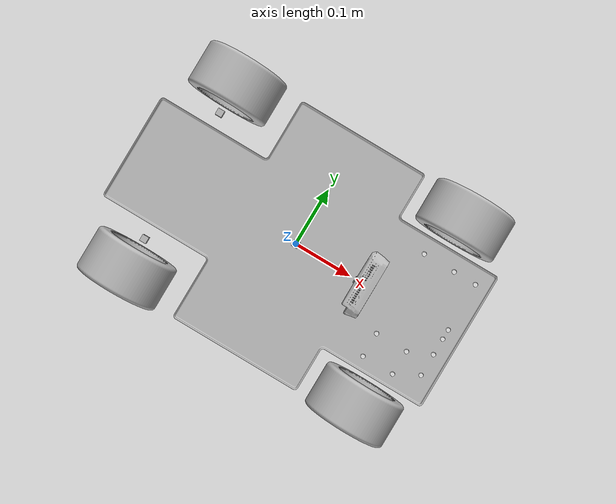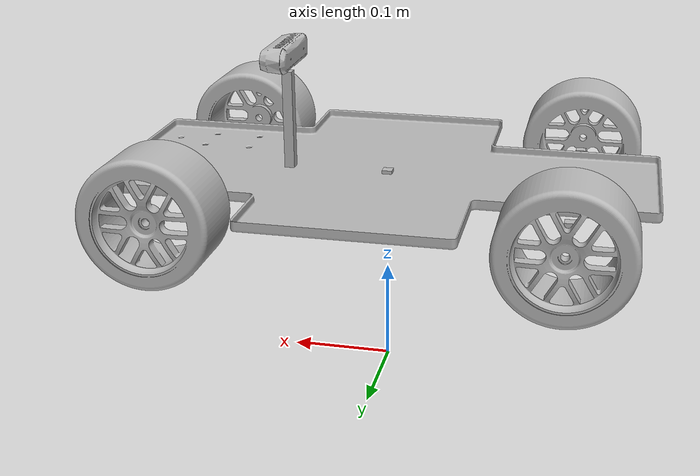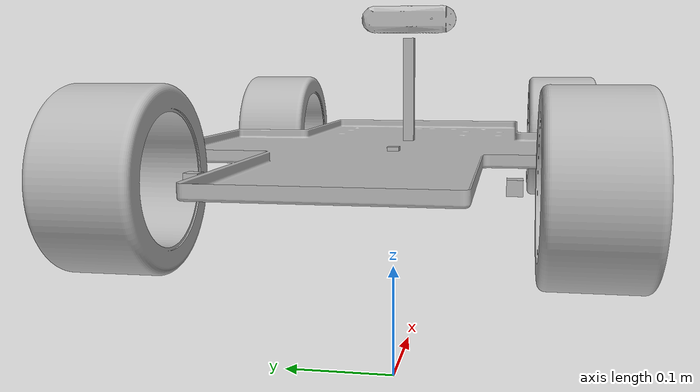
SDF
<sdf version='1.7'>
  <model name='vehicle'>
    <link name='vehicle'>
      <inertial>
        <pose>0.012549 0.002158 0.039696 0 -0 0</pose>
        <mass>4.574</mass>
        <inertia>
          <ixx>0.219171</ixx>
          <ixy>-0.00101314</ixy>
          <ixz>-0.0158164</ixz>
          <iyy>0.475754</iyy>
          <iyz>-0.00274192</iyz>
          <izz>0.592759</izz>
        </inertia>
      </inertial>
      <collision name='vehicle_fixed_joint_lump__base_link_collision'>
        <pose>0 0 0.2 0 -0 0</pose>
        <geometry>
          <box>
            <size>0.53 0.14 0.01</size>
          </box>
        </geometry>
      </collision>
      <collision name='vehicle_fixed_joint_lump__camera_link_collision_1'>
        <pose>0.1 0 0.3175 0 -0 0</pose>
        <geometry>
          <box>
            <size>0.02505 0.09 0.025</size>
          </box>
        </geometry>
        <surface>
          <contact>
            <ode>
              <kp>1e+13</kp>
              <kd>1</kd>
            </ode>
          </contact>
          <friction>
            <ode>
              <mu2>1</mu2>
              <fdir1>0 0 0</fdir1>
            </ode>
          </friction>
        </surface>
      </collision>
      <collision name='vehicle_fixed_joint_lump__camera_pole_link_collision_2'>
        <pose>0.1 0 0.25 0 -0 0</pose>
        <geometry>
          <box>
            <size>0.01 0.01 0.1</size>
          </box>
        </geometry>
      </collision>
      <visual name='vehicle_visual'>
        <pose>0 0 0.2 0 -0 0</pose>
        <geometry>
          <box>
            <size>0.01 0.01 0.01</size>
          </box>
        </geometry>
      </visual>
      <visual name='vehicle_fixed_joint_lump__base_link_visual_1'>
        <pose>0 0 0.2 0 -0 0</pose>
        <geometry>
          <mesh>
            <scale>1 1 1</scale>
            <uri>model://autonomous_vehicle_description/meshes/Base.stl</uri>
          </mesh>
        </geometry>
      </visual>
      <visual name='vehicle_fixed_joint_lump__camera_link_visual_2'>
        <pose>0.1149 0 0.3175 1.5708 -0 1.5708</pose>
        <geometry>
          <mesh>
            <scale>1 1 1</scale>
            <uri>model://realsense2_description/meshes/d435.dae</uri>
          </mesh>
        </geometry>
      </visual>
      <visual name='vehicle_fixed_joint_lump__camera_pole_link_visual_3'>
        <pose>0.1 0 0.25 0 -0 0</pose>
        <geometry>
          <box>
            <size>0.01 0.01 0.1</size>
          </box>
        </geometry>
      </visual>
      <self_collide>0</self_collide>
      <enable_wind>0</enable_wind>
      <kinematic>0</kinematic>
      <gravity>1</gravity>
      <sensor name='cameracolor' type='camera'>
        <camera name='camera'>
          <horizontal_fov>1.21126</horizontal_fov>
          <image>
            <width>640</width>
            <height>480</height>
            <format>RGB_INT8</format>
          </image>
          <clip>
            <near>0.1</near>
            <far>100</far>
          </clip>
          <noise>
            <type>gaussian</type>
            <mean>0</mean>
            <stddev>0.007</stddev>
          </noise>
        </camera>
        <always_on>1</always_on>
        <update_rate>30</update_rate>
        <visualize>1</visualize>
        <pose>0.1 0.0175 0.3175 0 -0 0</pose>
      </sensor>
      <sensor name='cameraired1' type='camera'>
        <camera name='camera'>
          <horizontal_fov>1.48702</horizontal_fov>
          <image>
            <width>1280</width>
            <height>720</height>
            <format>L_INT8</format>
          </image>
          <clip>
            <near>0.1</near>
            <far>100</far>
          </clip>
          <noise>
            <type>gaussian</type>
            <mean>0</mean>
            <stddev>0.05</stddev>
          </noise>
        </camera>
        <always_on>1</always_on>
        <update_rate>90</update_rate>
        <visualize>0</visualize>
        <pose>0.1 0.0175 0.3175 0 -0 0</pose>
      </sensor>
      <sensor name='cameraired2' type='camera'>
        <camera name='camera'>
          <horizontal_fov>1.48702</horizontal_fov>
          <image>
            <width>1280</width>
            <height>720</height>
            <format>L_INT8</format>
          </image>
          <clip>
            <near>0.1</near>
            <far>100</far>
          </clip>
          <noise>
            <type>gaussian</type>
            <mean>0</mean>
            <stddev>0.05</stddev>
          </noise>
        </camera>
        <always_on>1</always_on>
        <update_rate>90</update_rate>
        <visualize>0</visualize>
        <pose>0.1 0.0175 0.3175 0 -0 0</pose>
      </sensor>
      <sensor name='cameradepth' type='depth'>
        <camera name='camera'>
          <horizontal_fov>1.48702</horizontal_fov>
          <image>
            <width>1280</width>
            <height>720</height>
          </image>
          <clip>
            <near>0.1</near>
            <far>100</far>
          </clip>
          <noise>
            <type>gaussian</type>
            <mean>0</mean>
            <stddev>0.1</stddev>
          </noise>
        </camera>
        <always_on>1</always_on>
        <update_rate>90</update_rate>
        <visualize>0</visualize>
        <pose>0.1 0.0175 0.3175 0 -0 0</pose>
      </sensor>
    </link>
    <joint name='axle_left_rotate_joint' type='revolute'>
      <pose relative_to='vehicle'>-0.185 0.1025 0.2 0 -0 0</pose>
      <parent>vehicle</parent>
      <child>left_axle</child>
      <axis>
        <xyz>0 0 1</xyz>
        <limit>
          <lower>-0.35</lower>
          <upper>0.35</upper>
          <effort>1000</effort>
          <velocity>0.5</velocity>
        </limit>
        <dynamics>
          <spring_reference>0</spring_reference>
          <spring_stiffness>0</spring_stiffness>
        </dynamics>
      </axis>
    </joint>
    <link name='left_axle'>
      <pose relative_to='axle_left_rotate_joint'>0 0 0 0 -0 0</pose>
      <inertial>
        <pose>0 0 0 0 -0 0</pose>
        <mass>0.01</mass>
        <inertia>
          <ixx>0.001</ixx>
          <ixy>0</ixy>
          <ixz>0</ixz>
          <iyy>0.001</iyy>
          <iyz>0</iyz>
          <izz>0.001</izz>
        </inertia>
      </inertial>
      <visual name='left_axle_visual'>
        <pose>0 0 0 0 -0 0</pose>
        <geometry>
          <box>
            <size>0.01 0.01 0.01</size>
          </box>
        </geometry>
      </visual>
    </link>
    <joint name='wheel_left_rotate_joint' type='revolute'>
      <pose relative_to='left_axle'>0 0.0475 0 0 -0 0</pose>
      <parent>left_axle</parent>
      <child>LeftWheel_Front</child>
      <axis>
        <xyz>0 1 0</xyz>
        <limit>
          <lower>-1e+16</lower>
          <upper>1e+16</upper>
        </limit>
        <dynamics>
          <spring_reference>0</spring_reference>
          <spring_stiffness>0</spring_stiffness>
        </dynamics>
      </axis>
    </joint>
    <link name='LeftWheel_Front'>
      <pose relative_to='wheel_left_rotate_joint'>0 0 0 0 -0 0</pose>
      <inertial>
        <pose>0 0 0 0 -0 0</pose>
        <mass>1</mass>
        <inertia>
          <ixx>0.073454</ixx>
          <ixy>0</ixy>
          <ixz>0</ixz>
          <iyy>0.116212</iyy>
          <iyz>0</iyz>
          <izz>0.073454</izz>
        </inertia>
      </inertial>
      <collision name='LeftWheel_Front_collision'>
        <pose>0 0 0 1.5708 -0 0</pose>
        <geometry>
          <cylinder>
            <length>0.067</length>
            <radius>0.062</radius>
          </cylinder>
        </geometry>
      </collision>
      <visual name='LeftWheel_Front_visual'>
        <pose>0 0 0 0 -0 0</pose>
        <geometry>
          <mesh>
            <scale>1 1 1</scale>
            <uri>model://autonomous_vehicle_description/meshes/LeftWheel.stl</uri>
          </mesh>
        </geometry>
      </visual>
    </link>
    <joint name='axle_right_rotate_joint' type='revolute'>
      <pose relative_to='vehicle'>-0.185 -0.1025 0.2 0 -0 0</pose>
      <parent>vehicle</parent>
      <child>right_axle</child>
      <axis>
        <xyz>0 0 1</xyz>
        <limit>
          <lower>-0.35</lower>
          <upper>0.35</upper>
          <effort>1000</effort>
          <velocity>0.5</velocity>
        </limit>
        <dynamics>
          <spring_reference>0</spring_reference>
          <spring_stiffness>0</spring_stiffness>
        </dynamics>
      </axis>
    </joint>
    <link name='right_axle'>
      <pose relative_to='axle_right_rotate_joint'>0 0 0 0 -0 0</pose>
      <inertial>
        <pose>0 0 0 0 -0 0</pose>
        <mass>0.01</mass>
        <inertia>
          <ixx>0.001</ixx>
          <ixy>0</ixy>
          <ixz>0</ixz>
          <iyy>0.001</iyy>
          <iyz>0</iyz>
          <izz>0.001</izz>
        </inertia>
      </inertial>
      <visual name='right_axle_visual'>
        <pose>0 0 0 0 -0 0</pose>
        <geometry>
          <box>
            <size>0.01 0.01 0.01</size>
          </box>
        </geometry>
      </visual>
    </link>
    <joint name='wheel_right_rotate_joint' type='revolute'>
      <pose relative_to='right_axle'>0 -0.0475 0 0 -0 0</pose>
      <parent>right_axle</parent>
      <child>RightWheel_Front</child>
      <axis>
        <xyz>0 1 0</xyz>
        <limit>
          <lower>-1e+16</lower>
          <upper>1e+16</upper>
        </limit>
        <dynamics>
          <spring_reference>0</spring_reference>
          <spring_stiffness>0</spring_stiffness>
        </dynamics>
      </axis>
    </joint>
    <link name='RightWheel_Front'>
      <pose relative_to='wheel_right_rotate_joint'>0 0 0 0 -0 0</pose>
      <inertial>
        <pose>0 0 0 0 -0 0</pose>
        <mass>1</mass>
        <inertia>
          <ixx>0.073454</ixx>
          <ixy>0</ixy>
          <ixz>0</ixz>
          <iyy>0.116212</iyy>
          <iyz>0</iyz>
          <izz>0.073454</izz>
        </inertia>
      </inertial>
      <collision name='RightWheel_Front_collision'>
        <pose>0 0 0 1.5708 -0 0</pose>
        <geometry>
          <cylinder>
            <length>0.067</length>
            <radius>0.062</radius>
          </cylinder>
        </geometry>
      </collision>
      <visual name='RightWheel_Front_visual'>
        <pose>0 0 0 0 -0 0</pose>
        <geometry>
          <mesh>
            <scale>1 1 1</scale>
            <uri>model://autonomous_vehicle_description/meshes/RightWheel.stl</uri>
          </mesh>
        </geometry>
      </visual>
    </link>
    <joint name='LeftWheel_joint' type='revolute'>
      <pose relative_to='vehicle'>0.185 0.15 0.2 0 -0 0</pose>
      <parent>vehicle</parent>
      <child>LeftWheel_Back</child>
      <axis>
        <xyz>0 1 0</xyz>
        <limit>
          <lower>-1e+16</lower>
          <upper>1e+16</upper>
        </limit>
        <dynamics>
          <spring_reference>0</spring_reference>
          <spring_stiffness>0</spring_stiffness>
        </dynamics>
      </axis>
    </joint>
    <link name='LeftWheel_Back'>
      <pose relative_to='LeftWheel_joint'>0 0 0 0 -0 0</pose>
      <inertial>
        <pose>0 0 0 0 -0 0</pose>
        <mass>1</mass>
        <inertia>
          <ixx>0.073454</ixx>
          <ixy>0</ixy>
          <ixz>0</ixz>
          <iyy>0.116212</iyy>
          <iyz>0</iyz>
          <izz>0.073454</izz>
        </inertia>
      </inertial>
      <collision name='LeftWheel_Back_collision'>
        <pose>0 0 0 1.5708 -0 0</pose>
        <geometry>
          <cylinder>
            <length>0.067</length>
            <radius>0.062</radius>
          </cylinder>
        </geometry>
      </collision>
      <visual name='LeftWheel_Back_visual'>
        <pose>0 0 0 0 -0 0</pose>
        <geometry>
          <mesh>
            <scale>1 1 1</scale>
            <uri>model://autonomous_vehicle_description/meshes/LeftWheel.stl</uri>
          </mesh>
        </geometry>
      </visual>
    </link>
    <joint name='RightWheel_joint' type='revolute'>
      <pose relative_to='vehicle'>0.185 -0.15 0.2 0 -0 0</pose>
      <parent>vehicle</parent>
      <child>RightWheel_Back</child>
      <axis>
        <xyz>0 1 0</xyz>
        <limit>
          <lower>-1e+16</lower>
          <upper>1e+16</upper>
        </limit>
        <dynamics>
          <spring_reference>0</spring_reference>
          <spring_stiffness>0</spring_stiffness>
        </dynamics>
      </axis>
    </joint>
    <link name='RightWheel_Back'>
      <pose relative_to='RightWheel_joint'>0 0 0 0 -0 0</pose>
      <inertial>
        <pose>0 0 0 0 -0 0</pose>
        <mass>1</mass>
        <inertia>
          <ixx>0.073454</ixx>
          <ixy>0</ixy>
          <ixz>0</ixz>
          <iyy>0.116212</iyy>
          <iyz>0</iyz>
          <izz>0.073454</izz>
        </inertia>
      </inertial>
      <collision name='RightWheel_Back_collision'>
        <pose>0 0 0 1.5708 -0 0</pose>
        <geometry>
          <cylinder>
            <length>0.067</length>
            <radius>0.062</radius>
          </cylinder>
        </geometry>
      </collision>
      <visual name='RightWheel_Back_visual'>
        <pose>0 0 0 0 -0 0</pose>
        <geometry>
          <mesh>
            <scale>1 1 1</scale>
            <uri>model://autonomous_vehicle_description/meshes/RightWheel.stl</uri>
          </mesh>
        </geometry>
      </visual>
    </link>
    <plugin name='camera' filename='librealsense_gazebo_plugin.so'>
      <prefix>camera</prefix>
      <depthUpdateRate>30.0</depthUpdateRate>
      <colorUpdateRate>30.0</colorUpdateRate>
      <infraredUpdateRate>30.0</infraredUpdateRate>
      <depthTopicName>depth/image_raw</depthTopicName>
      <depthCameraInfoTopicName>depth/camera_info</depthCameraInfoTopicName>
      <colorTopicName>color/image_raw</colorTopicName>
      <colorCameraInfoTopicName>color/camera_info</colorCameraInfoTopicName>
      <infrared1TopicName>infra1/image_raw</infrared1TopicName>
      <infrared1CameraInfoTopicName>infra1/camera_info</infrared1CameraInfoTopicName>
      <infrared2TopicName>infra2/image_raw</infrared2TopicName>
      <infrared2CameraInfoTopicName>infra2/camera_info</infrared2CameraInfoTopicName>
      <colorOpticalframeName>camera_color_optical_frame</colorOpticalframeName>
      <depthOpticalframeName>camera_depth_optical_frame</depthOpticalframeName>
      <infrared1OpticalframeName>camera_left_ir_optical_frame</infrared1OpticalframeName>
      <infrared2OpticalframeName>camera_right_ir_optical_frame</infrared2OpticalframeName>
      <rangeMinDepth>0.2</rangeMinDepth>
      <rangeMaxDepth>10.0</rangeMaxDepth>
      <pointCloud>1</pointCloud>
      <pointCloudTopicName>depth/color/points</pointCloudTopicName>
      <pointCloudCutoff>0.25</pointCloudCutoff>
      <pointCloudCutoffMax>9.0</pointCloudCutoffMax>
    </plugin>
    <static>0</static>
    <plugin name='gazebo_ros_control' filename='libgazebo_ros_control.so'>
      <robotNamespace>/</robotNamespace>
    </plugin>
  </model>
</sdf>
